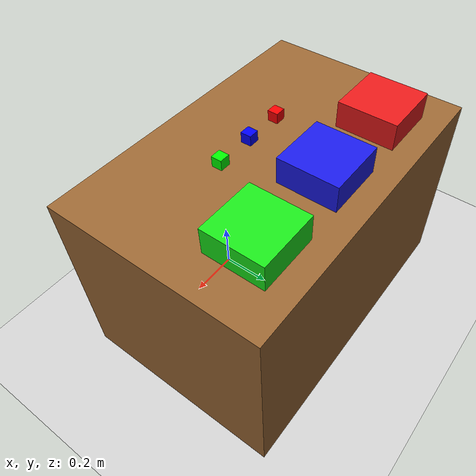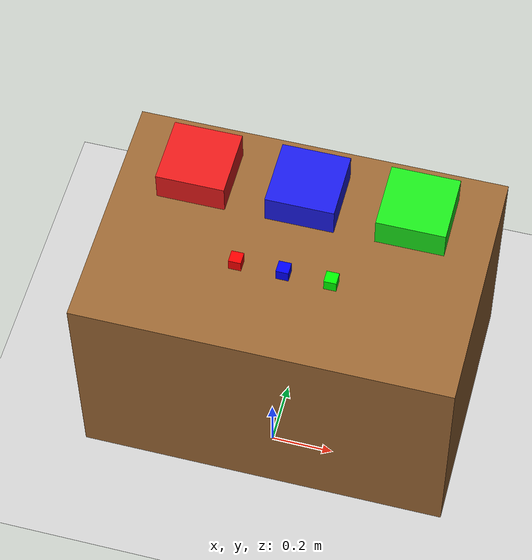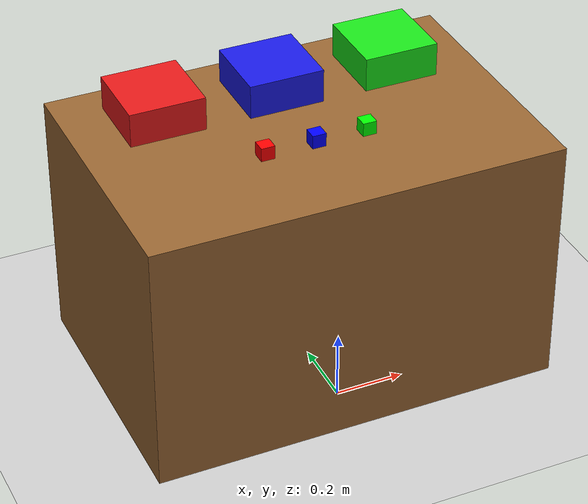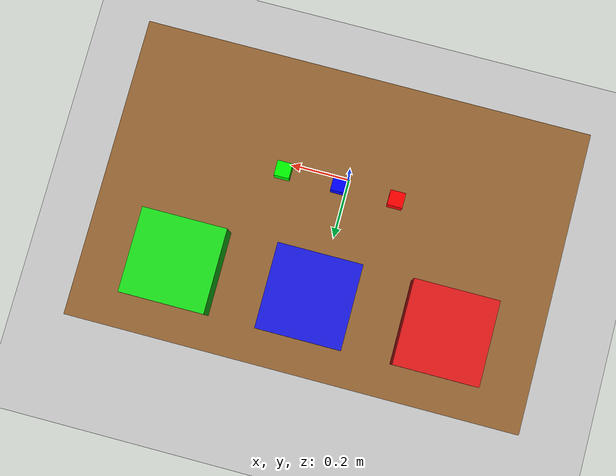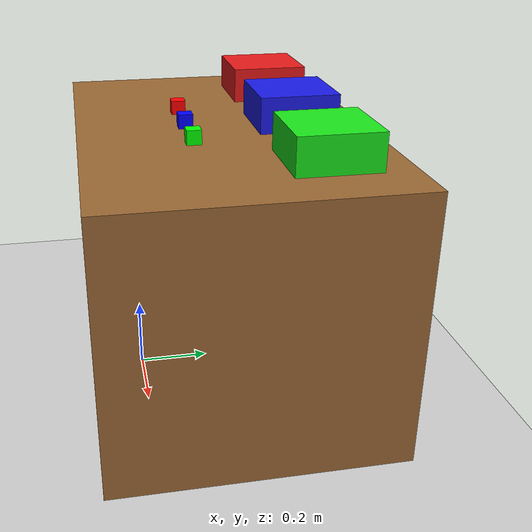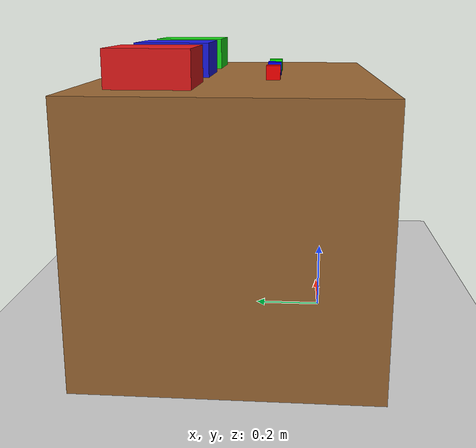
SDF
<?xml version="1.0" ?>
<sdf version="1.8">
  <world name="desk_world">

    <physics name="1ms" type="ignored">
      <max_step_size>0.001</max_step_size>
      <real_time_factor>1.0</real_time_factor>
    </physics>

    <!-- Plugins -->
    <plugin filename="gz-sim-physics-system" name="gz::sim::systems::Physics"/>
    <plugin filename="gz-sim-user-commands-system" name="gz::sim::systems::UserCommands"/>
    <plugin filename="gz-sim-scene-broadcaster-system" name="gz::sim::systems::SceneBroadcaster"/>

    <!-- Sun Light -->
    <light type="directional" name="sun">
      <cast_shadows>true</cast_shadows>
      <pose>0 0 10 0 0 0</pose>
      <diffuse>0.8 0.8 0.8 1</diffuse>
      <specular>0.2 0.2 0.2 1</specular>
      <attenuation>
        <range>1000</range>
        <constant>0.9</constant>
        <linear>0.01</linear>
        <quadratic>0.001</quadratic>
      </attenuation>
      <direction>-0.5 0.1 -0.9</direction>
    </light>

    <!-- Ground Plane -->
    <model name="ground_plane">
      <static>true</static>
      <link name="link">
        <collision name="collision">
          <geometry>
            <plane>
              <normal>0 0 1</normal>
              <size>100 100</size>
            </plane>
          </geometry>
        </collision>
        <visual name="visual">
          <geometry>
            <plane>
              <normal>0 0 1</normal>
              <size>100 100</size>
            </plane>
          </geometry>
          <material>
            <ambient>0.8 0.8 0.8 1</ambient>
            <diffuse>0.8 0.8 0.8 1</diffuse>
            <specular>0.8 0.8 0.8 1</specular>
          </material>
        </visual>
      </link>
    </model>

    <!-- Desk / Table Model -->
    <model name="desk">
      <static>true</static>
      <pose>0.0 0.25 0.375 0 0 0</pose>
      <link name="link">
        <collision name="collision">
          <geometry>
            <box>
              <size>1.2 0.8 0.75</size>
            </box>
          </geometry>
        </collision>
        <visual name="visual">
          <geometry>
            <box>
              <size>1.2 0.8 0.75</size>
            </box>
          </geometry>
          <material>
            <ambient>0.6 0.4 0.2 1</ambient>
            <diffuse>0.6 0.4 0.2 1</diffuse>
          </material>
        </visual>
      </link>
    </model>

    <!-- Bin 1 (Primary / Red Bin) -->
    <model name="red_bin">
      <static>true</static>
      <pose>-0.35 0.45 0.8 0 0 0</pose>
      <link name="link">
        <collision name="collision">
          <geometry>
            <box>
              <size>0.22 0.22 0.1</size>
            </box>
          </geometry>
        </collision>
        <visual name="visual">
          <geometry>
            <box>
              <size>0.22 0.22 0.1</size>
            </box>
          </geometry>
          <material>
            <ambient>0.9 0.1 0.1 1</ambient>
            <diffuse>0.9 0.1 0.1 1</diffuse>
          </material>
        </visual>
      </link>
    </model>

    <!-- Bin 2 (Blue Bin) -->
    <model name="blue_bin">
      <static>true</static>
      <pose>0.0 0.45 0.8 0 0 0</pose>
      <link name="link">
        <collision name="collision">
          <geometry>
            <box>
              <size>0.22 0.22 0.1</size>
            </box>
          </geometry>
        </collision>
        <visual name="visual">
          <geometry>
            <box>
              <size>0.22 0.22 0.1</size>
            </box>
          </geometry>
          <material>
            <ambient>0.1 0.1 0.9 1</ambient>
            <diffuse>0.1 0.1 0.9 1</diffuse>
          </material>
        </visual>
      </link>
    </model>

    <!-- Bin 3 (Green Bin) -->
    <model name="green_bin">
      <static>true</static>
      <pose>0.35 0.45 0.8 0 0 0</pose>
      <link name="link">
        <collision name="collision">
          <geometry>
            <box>
              <size>0.22 0.22 0.1</size>
            </box>
          </geometry>
        </collision>
        <visual name="visual">
          <geometry>
            <box>
              <size>0.22 0.22 0.1</size>
            </box>
          </geometry>
          <material>
            <ambient>0.1 0.9 0.1 1</ambient>
            <diffuse>0.1 0.9 0.1 1</diffuse>
          </material>
        </visual>
      </link>
    </model>

    <!-- Pickable Object 1: Red Cube -->
    <model name="red_cube">
      <pose>-0.15 0.15 0.77 0 0 0</pose>
      <link name="link">
        <inertial>
          <mass>0.1</mass>
          <inertia>
            <ixx>0.00002</ixx><ixy>0</ixy><ixz>0</ixz>
            <iyy>0.00002</iyy><iyz>0</iyz>
            <izz>0.00002</izz>
          </inertia>
        </inertial>
        <collision name="collision">
          <geometry>
            <box>
              <size>0.04 0.04 0.04</size>
            </box>
          </geometry>
          <surface>
            <friction>
              <ode>
                <mu>1.5</mu>
                <mu2>1.5</mu2>
              </ode>
            </friction>
          </surface>
        </collision>
        <visual name="visual">
          <geometry>
            <box>
              <size>0.04 0.04 0.04</size>
            </box>
          </geometry>
          <material>
            <ambient>1.0 0.0 0.0 1</ambient>
            <diffuse>1.0 0.0 0.0 1</diffuse>
          </material>
        </visual>
      </link>
    </model>

    <!-- Pickable Object 2: Blue Cube -->
    <model name="blue_cube">
      <pose>0.0 0.15 0.77 0 0 0</pose>
      <link name="link">
        <inertial>
          <mass>0.1</mass>
          <inertia>
            <ixx>0.00002</ixx><ixy>0</ixy><ixz>0</ixz>
            <iyy>0.00002</iyy><iyz>0</iyz>
            <izz>0.00002</izz>
          </inertia>
        </inertial>
        <collision name="collision">
          <geometry>
            <box>
              <size>0.04 0.04 0.04</size>
            </box>
          </geometry>
          <surface>
            <friction>
              <ode>
                <mu>1.5</mu>
                <mu2>1.5</mu2>
              </ode>
            </friction>
          </surface>
        </collision>
        <visual name="visual">
          <geometry>
            <box>
              <size>0.04 0.04 0.04</size>
            </box>
          </geometry>
          <material>
            <ambient>0.0 0.0 1.0 1</ambient>
            <diffuse>0.0 0.0 1.0 1</diffuse>
          </material>
        </visual>
      </link>
    </model>

    <!-- Pickable Object 3: Green Cube -->
    <model name="green_cube">
      <pose>0.15 0.15 0.77 0 0 0</pose>
      <link name="link">
        <inertial>
          <mass>0.1</mass>
          <inertia>
            <ixx>0.00002</ixx><ixy>0</ixy><ixz>0</ixz>
            <iyy>0.00002</iyy><iyz>0</iyz>
            <izz>0.00002</izz>
          </inertia>
        </inertial>
        <collision name="collision">
          <geometry>
            <box>
              <size>0.04 0.04 0.04</size>
            </box>
          </geometry>
          <surface>
            <friction>
              <ode>
                <mu>1.5</mu>
                <mu2>1.5</mu2>
              </ode>
            </friction>
          </surface>
        </collision>
        <visual name="visual">
          <geometry>
            <box>
              <size>0.04 0.04 0.04</size>
            </box>
          </geometry>
          <material>
            <ambient>0.0 1.0 0.0 1</ambient>
            <diffuse>0.0 1.0 0.0 1</diffuse>
          </material>
        </visual>
      </link>
    </model>

  </world>
</sdf>
